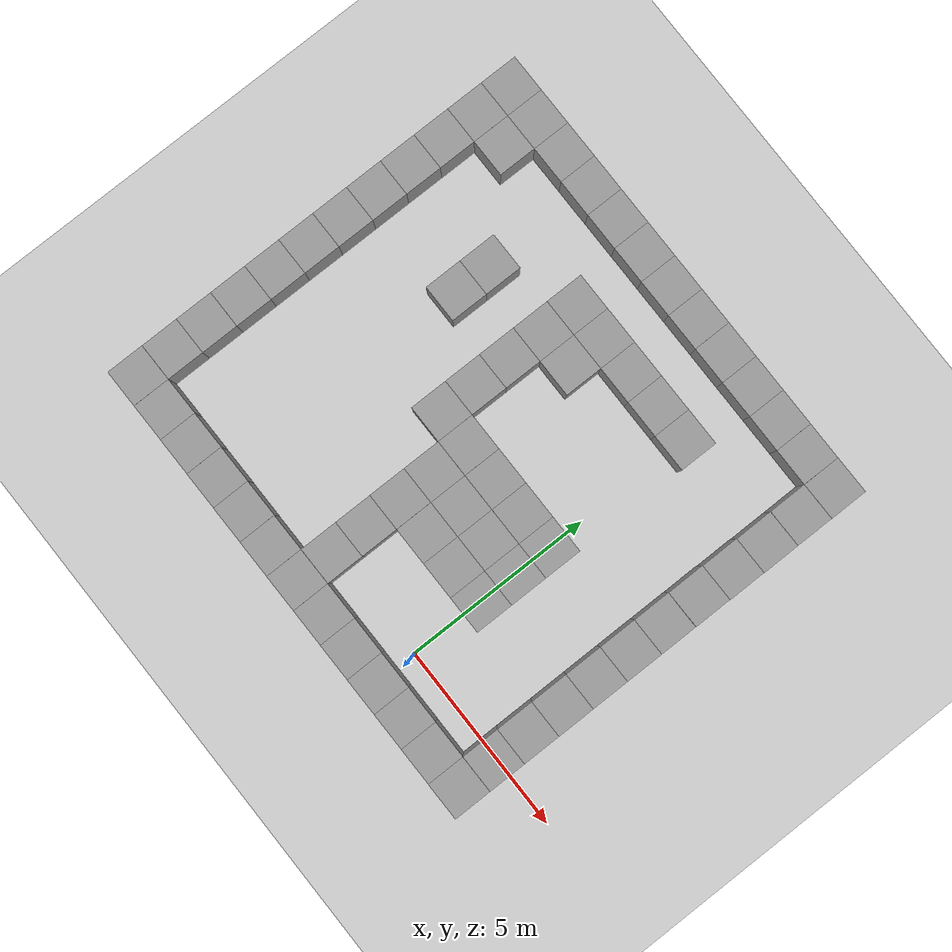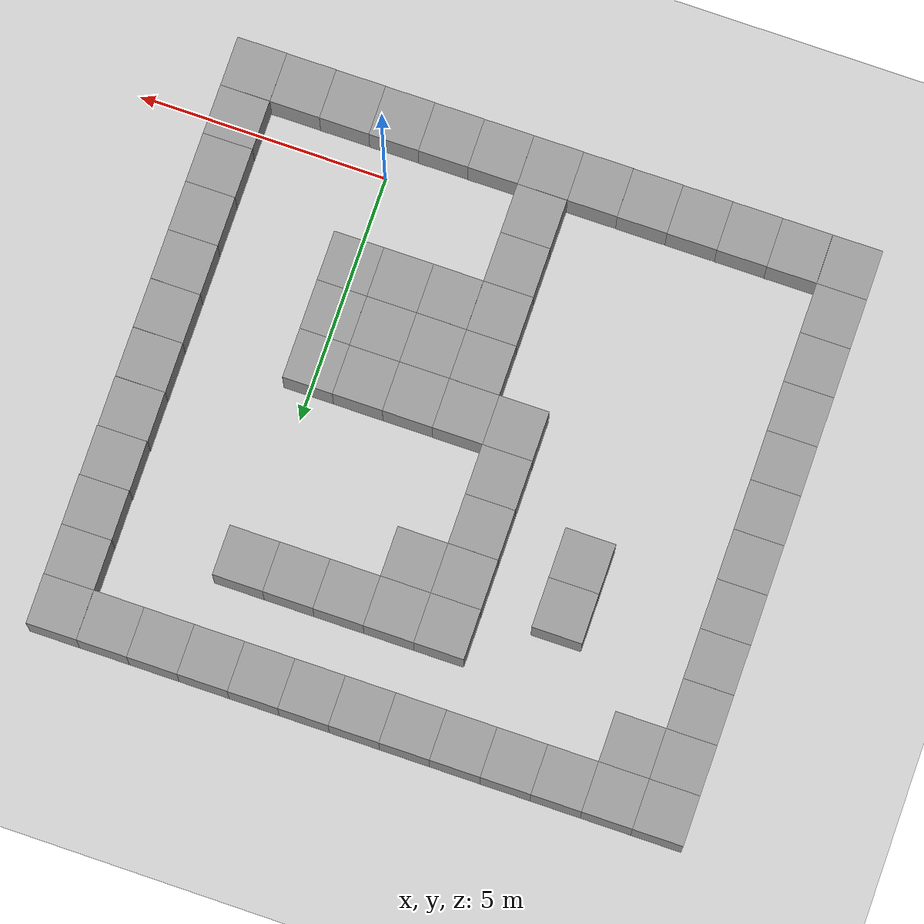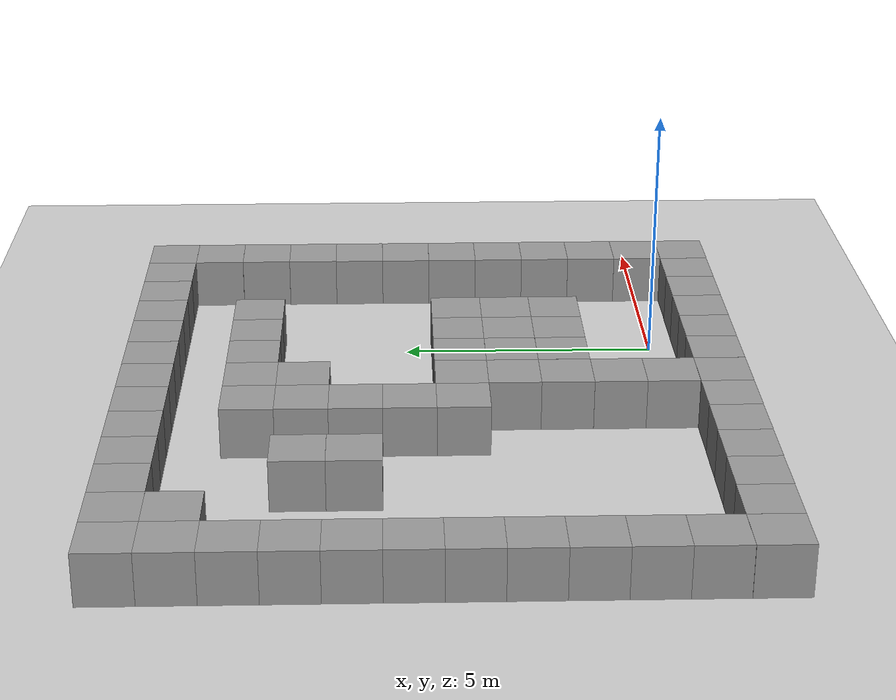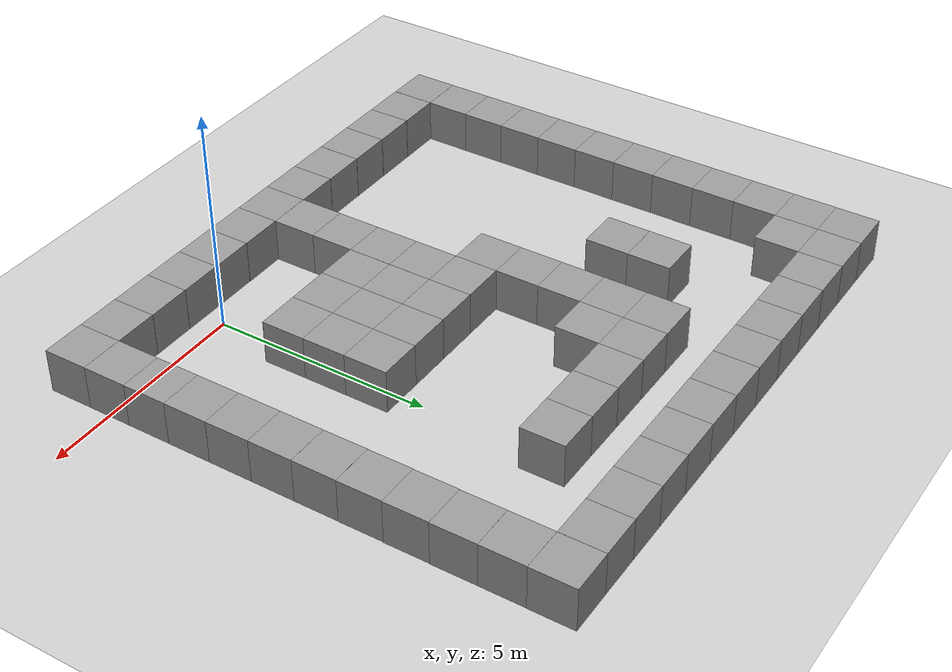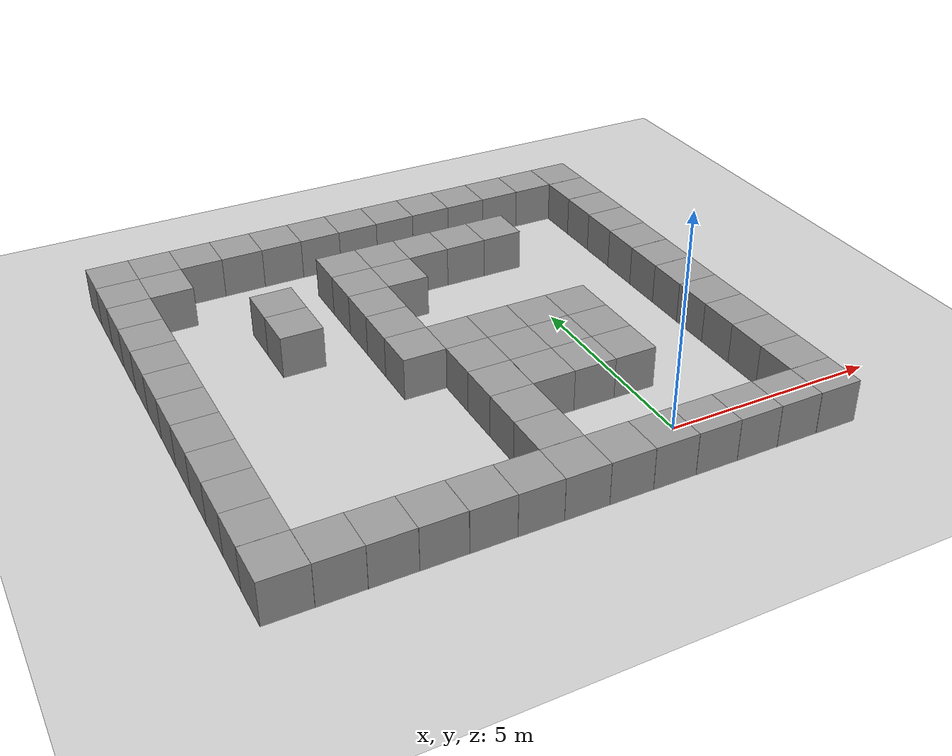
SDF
<sdf version="1.6">
 <world name="default">
  <light name="sun" type="directional">
   <pose>0 0 10 0 -0 0</pose>
   <diffuse>0.8 0.8 0.8 1</diffuse>
   <specular>0.2 0.2 0.2 1</specular>
   <attenuation>
    <range>1000</range>
    <constant>0.9</constant>
    <linear>0.01</linear>
    <quadratic>0.001</quadratic>
   </attenuation>
   <direction>-0.5 0.1 -0.9</direction>
  </light>
  <model name="ground_plane">
   <static>1</static>
   <link name="link">
    <collision name="collision">
     <geometry><plane><normal>0 0 1</normal><size>100 100</size></plane></geometry>
     <surface>
      <contact><collide_bitmask>65535</collide_bitmask></contact>
      <friction><ode><mu>100</mu><mu2>50</mu2></ode></friction>
     </surface>
    </collision>
    <visual name="visual">
     <cast_shadows>0</cast_shadows>
     <geometry><plane><normal>0 0 1</normal><size>100 100</size></plane></geometry>
     <material>
      <script><uri>file://media/materials/scripts/gazebo.material</uri><name>Gazebo/Grey</name></script>
     </material>
    </visual>
   </link>
  </model>
  <gravity>0 0 -9.8</gravity>
  <magnetic_field>6e-06 2.3e-05 -4.2e-05</magnetic_field>
  <atmosphere type="adiabatic"/>
  <physics name="default_physics" default="0" type="ode">
   <max_step_size>0.001</max_step_size>
   <real_time_factor>1</real_time_factor>
   <real_time_update_rate>1000</real_time_update_rate>
  </physics>
  <scene><ambient>0.4 0.4 0.4 1</ambient><background>0.7 0.7 0.7 1</background><shadows>1</shadows></scene>
  <audio><device>default</device></audio>
  <spherical_coordinates>
   <surface_model>EARTH_WGS84</surface_model>
   <latitude_deg>0</latitude_deg>
   <longitude_deg>0</longitude_deg>
   <elevation>0</elevation>
   <heading_deg>0</heading_deg>
  </spherical_coordinates>
  <model name="unit_box">
   <pose>1.00062 -1.00046 0.499995 0 1e-05 0.004028</pose>
   <link name="link">
    <inertial>
     <mass>1</mass>
     <inertia>
      <ixx>0.166667</ixx>
      <ixy>0</ixy>
      <ixz>0</ixz>
      <iyy>0.166667</iyy>
      <iyz>0</iyz>
      <izz>0.166667</izz>
     </inertia>
    </inertial>
    <collision name="collision"><geometry><box><size>1 1 1</size></box></geometry></collision>
    <visual name="visual">
     <geometry><box><size>1 1 1</size></box></geometry>
     <material>
      <script><name>Gazebo/Grey</name><uri>file://media/materials/scripts/gazebo.material</uri></script>
     </material>
    </visual>
   </link>
  </model>
  <model name="unit_box_0">
   <pose>2.00065 -1.00086 0.499995 -1e-05 -0 0.004051</pose>
   <link name="link">
    <inertial>
     <mass>1</mass>
     <inertia>
      <ixx>0.166667</ixx>
      <ixy>0</ixy>
      <ixz>0</ixz>
      <iyy>0.166667</iyy>
      <iyz>0</iyz>
      <izz>0.166667</izz>
     </inertia>
    </inertial>
    <collision name="collision"><geometry><box><size>1 1 1</size></box></geometry></collision>
    <visual name="visual">
     <geometry><box><size>1 1 1</size></box></geometry>
     <material>
      <script><name>Gazebo/Grey</name><uri>file://media/materials/scripts/gazebo.material</uri></script>
     </material>
    </visual>
   </link>
  </model>
  <model name="unit_box_1">
   <pose>3.00115 -1.00316 0.499995 -1e-05 -0 0.003325</pose>
   <link name="link">
    <inertial>
     <mass>1</mass>
     <inertia>
      <ixx>0.166667</ixx>
      <ixy>0</ixy>
      <ixz>0</ixz>
      <iyy>0.166667</iyy>
      <iyz>0</iyz>
      <izz>0.166667</izz>
     </inertia>
    </inertial>
    <collision name="collision"><geometry><box><size>1 1 1</size></box></geometry></collision>
    <visual name="visual">
     <geometry><box><size>1 1 1</size></box></geometry>
     <material>
      <script><name>Gazebo/Grey</name><uri>file://media/materials/scripts/gazebo.material</uri></script>
     </material>
    </visual>
   </link>
  </model>
  <model name="unit_box_3">
   <pose>-9.00138 -1.001 0.5 0 -0 0.00241</pose>
   <link name="link">
    <inertial>
     <mass>1</mass>
     <inertia>
      <ixx>0.166667</ixx>
      <ixy>0</ixy>
      <ixz>0</ixz>
      <iyy>0.166667</iyy>
      <iyz>0</iyz>
      <izz>0.166667</izz>
     </inertia>
    </inertial>
    <collision name="collision"><geometry><box><size>1 1 1</size></box></geometry></collision>
    <visual name="visual">
     <geometry><box><size>1 1 1</size></box></geometry>
     <material>
      <script><name>Gazebo/Grey</name><uri>file://media/materials/scripts/gazebo.material</uri></script>
     </material>
    </visual>
   </link>
  </model>
  <model name="unit_box_2">
   <pose>-8.00036 -0.999388 0.5 0 -0 0.004448</pose>
   <link name="link">
    <inertial>
     <mass>1</mass>
     <inertia>
      <ixx>0.166667</ixx>
      <ixy>0</ixy>
      <ixz>0</ixz>
      <iyy>0.166667</iyy>
      <iyz>0</iyz>
      <izz>0.166667</izz>
     </inertia>
    </inertial>
    <collision name="collision"><geometry><box><size>1 1 1</size></box></geometry></collision>
    <visual name="visual">
     <geometry><box><size>1 1 1</size></box></geometry>
     <material>
      <script><name>Gazebo/Grey</name><uri>file://media/materials/scripts/gazebo.material</uri></script>
     </material>
    </visual>
   </link>
  </model>
  <model name="unit_box_4">
   <pose>-7.00034 -0.999734 0.5 0 -0 0.004461</pose>
   <link name="link">
    <inertial>
     <mass>1</mass>
     <inertia>
      <ixx>0.166667</ixx>
      <ixy>0</ixy>
      <ixz>0</ixz>
      <iyy>0.166667</iyy>
      <iyz>0</iyz>
      <izz>0.166667</izz>
     </inertia>
    </inertial>
    <collision name="collision"><geometry><box><size>1 1 1</size></box></geometry></collision>
    <visual name="visual">
     <geometry><box><size>1 1 1</size></box></geometry>
     <material>
      <script><name>Gazebo/Grey</name><uri>file://media/materials/scripts/gazebo.material</uri></script>
     </material>
    </visual>
   </link>
  </model>
  <model name="unit_box_5">
   <pose>-6.00031 -1.00048 0.5 0 -0 0.004475</pose>
   <link name="link">
    <inertial>
     <mass>1</mass>
     <inertia>
      <ixx>0.166667</ixx>
      <ixy>0</ixy>
      <ixz>0</ixz>
      <iyy>0.166667</iyy>
      <iyz>0</iyz>
      <izz>0.166667</izz>
     </inertia>
    </inertial>
    <collision name="collision"><geometry><box><size>1 1 1</size></box></geometry></collision>
    <visual name="visual">
     <geometry><box><size>1 1 1</size></box></geometry>
     <material>
      <script><name>Gazebo/Grey</name><uri>file://media/materials/scripts/gazebo.material</uri></script>
     </material>
    </visual>
   </link>
  </model>
  <model name="unit_box_6">
   <pose>-5.00003 -1.00082 0.499995 0 -1e-05 0.004006</pose>
   <link name="link">
    <inertial>
     <mass>1</mass>
     <inertia>
      <ixx>0.166667</ixx>
      <ixy>0</ixy>
      <ixz>0</ixz>
      <iyy>0.166667</iyy>
      <iyz>0</iyz>
      <izz>0.166667</izz>
     </inertia>
    </inertial>
    <collision name="collision"><geometry><box><size>1 1 1</size></box></geometry></collision>
    <visual name="visual">
     <geometry><box><size>1 1 1</size></box></geometry>
     <material>
      <script><name>Gazebo/Grey</name><uri>file://media/materials/scripts/gazebo.material</uri></script>
     </material>
    </visual>
   </link>
  </model>
  <model name="unit_box_7">
   <pose>-3.99986 -1.00158 0.499995 -0 -1e-05 0.003713</pose>
   <link name="link">
    <inertial>
     <mass>1</mass>
     <inertia>
      <ixx>0.166667</ixx>
      <ixy>0</ixy>
      <ixz>0</ixz>
      <iyy>0.166667</iyy>
      <iyz>0</iyz>
      <izz>0.166667</izz>
     </inertia>
    </inertial>
    <collision name="collision"><geometry><box><size>1 1 1</size></box></geometry></collision>
    <visual name="visual">
     <geometry><box><size>1 1 1</size></box></geometry>
     <material>
      <script><name>Gazebo/Grey</name><uri>file://media/materials/scripts/gazebo.material</uri></script>
     </material>
    </visual>
   </link>
  </model>
  <model name="unit_box_8">
   <pose>-2.99973 -1.00164 0.499995 0 -1e-05 0.003477</pose>
   <link name="link">
    <inertial>
     <mass>1</mass>
     <inertia>
      <ixx>0.166667</ixx>
      <ixy>0</ixy>
      <ixz>0</ixz>
      <iyy>0.166667</iyy>
      <iyz>0</iyz>
      <izz>0.166667</izz>
     </inertia>
    </inertial>
    <collision name="collision"><geometry><box><size>1 1 1</size></box></geometry></collision>
    <visual name="visual">
     <geometry><box><size>1 1 1</size></box></geometry>
     <material>
      <script><name>Gazebo/Grey</name><uri>file://media/materials/scripts/gazebo.material</uri></script>
     </material>
    </visual>
   </link>
  </model>
  <model name="unit_box_9">
   <pose>-1.99944 -0.999945 0.499995 -1e-05 -0 0.004012</pose>
   <link name="link">
    <inertial>
     <mass>1</mass>
     <inertia>
      <ixx>0.166667</ixx>
      <ixy>0</ixy>
      <ixz>0</ixz>
      <iyy>0.166667</iyy>
      <iyz>0</iyz>
      <izz>0.166667</izz>
     </inertia>
    </inertial>
    <collision name="collision"><geometry><box><size>1 1 1</size></box></geometry></collision>
    <visual name="visual">
     <geometry><box><size>1 1 1</size></box></geometry>
     <material>
      <script><name>Gazebo/Grey</name><uri>file://media/materials/scripts/gazebo.material</uri></script>
     </material>
    </visual>
   </link>
  </model>
  <model name="unit_box_10">
   <pose>-0.999414 -1.00001 0.499995 0 1e-05 0.004016</pose>
   <link name="link">
    <inertial>
     <mass>1</mass>
     <inertia>
      <ixx>0.166667</ixx>
      <ixy>0</ixy>
      <ixz>0</ixz>
      <iyy>0.166667</iyy>
      <iyz>0</iyz>
      <izz>0.166667</izz>
     </inertia>
    </inertial>
    <collision name="collision"><geometry><box><size>1 1 1</size></box></geometry></collision>
    <visual name="visual">
     <geometry><box><size>1 1 1</size></box></geometry>
     <material>
      <script><name>Gazebo/Grey</name><uri>file://media/materials/scripts/gazebo.material</uri></script>
     </material>
    </visual>
   </link>
  </model>
  <model name="unit_box_11">
   <pose>0.000588 -1.00039 0.499995 0 -1e-05 0.004016</pose>
   <link name="link">
    <inertial>
     <mass>1</mass>
     <inertia>
      <ixx>0.166667</ixx>
      <ixy>0</ixy>
      <ixz>0</ixz>
      <iyy>0.166667</iyy>
      <iyz>0</iyz>
      <izz>0.166667</izz>
     </inertia>
    </inertial>
    <collision name="collision"><geometry><box><size>1 1 1</size></box></geometry></collision>
    <visual name="visual">
     <geometry><box><size>1 1 1</size></box></geometry>
     <material>
      <script><name>Gazebo/Grey</name><uri>file://media/materials/scripts/gazebo.material</uri></script>
     </material>
    </visual>
   </link>
  </model>
  <model name="unit_box_12">
   <pose>-9.00029 0.000122 0.499995 0 1e-05 0.000165</pose>
   <link name="link">
    <inertial>
     <mass>1</mass>
     <inertia>
      <ixx>0.166667</ixx>
      <ixy>0</ixy>
      <ixz>0</ixz>
      <iyy>0.166667</iyy>
      <iyz>0</iyz>
      <izz>0.166667</izz>
     </inertia>
    </inertial>
    <collision name="collision"><geometry><box><size>1 1 1</size></box></geometry></collision>
    <visual name="visual">
     <geometry><box><size>1 1 1</size></box></geometry>
     <material>
      <script><name>Gazebo/Grey</name><uri>file://media/materials/scripts/gazebo.material</uri></script>
     </material>
    </visual>
   </link>
  </model>
  <model name="unit_box_15">
   <pose>-3.00118 2.00026 0.5 0 -0 -0.000276</pose>
   <link name="link">
    <inertial>
     <mass>1</mass>
     <inertia>
      <ixx>0.166667</ixx>
      <ixy>0</ixy>
      <ixz>0</ixz>
      <iyy>0.166667</iyy>
      <iyz>0</iyz>
      <izz>0.166667</izz>
     </inertia>
    </inertial>
    <collision name="collision"><geometry><box><size>1 1 1</size></box></geometry></collision>
    <visual name="visual">
     <geometry><box><size>1 1 1</size></box></geometry>
     <material>
      <script><name>Gazebo/Grey</name><uri>file://media/materials/scripts/gazebo.material</uri></script>
     </material>
    </visual>
   </link>
  </model>
  <model name="unit_box_24">
   <pose>-9 1.00012 0.499995 0 1e-05 0.000165</pose>
   <link name="link">
    <inertial>
     <mass>1</mass>
     <inertia>
      <ixx>0.166667</ixx>
      <ixy>0</ixy>
      <ixz>0</ixz>
      <iyy>0.166667</iyy>
      <iyz>0</iyz>
      <izz>0.166667</izz>
     </inertia>
    </inertial>
    <collision name="collision"><geometry><box><size>1 1 1</size></box></geometry></collision>
    <visual name="visual">
     <geometry><box><size>1 1 1</size></box></geometry>
     <material>
      <script><name>Gazebo/Grey</name><uri>file://media/materials/scripts/gazebo.material</uri></script>
     </material>
    </visual>
   </link>
  </model>
  <model name="unit_box_25">
   <pose>-8.99969 2.00013 0.5 0 -0 0.000156</pose>
   <link name="link">
    <inertial>
     <mass>1</mass>
     <inertia>
      <ixx>0.166667</ixx>
      <ixy>0</ixy>
      <ixz>0</ixz>
      <iyy>0.166667</iyy>
      <iyz>0</iyz>
      <izz>0.166667</izz>
     </inertia>
    </inertial>
    <collision name="collision"><geometry><box><size>1 1 1</size></box></geometry></collision>
    <visual name="visual">
     <geometry><box><size>1 1 1</size></box></geometry>
     <material>
      <script><name>Gazebo/Grey</name><uri>file://media/materials/scripts/gazebo.material</uri></script>
     </material>
    </visual>
   </link>
  </model>
  <model name="unit_box_30">
   <pose>-9.00002 8.00018 0.499995 0 1e-05 0.000166</pose>
   <link name="link">
    <inertial>
     <mass>1</mass>
     <inertia>
      <ixx>0.166667</ixx>
      <ixy>0</ixy>
      <ixz>0</ixz>
      <iyy>0.166667</iyy>
      <iyz>0</iyz>
      <izz>0.166667</izz>
     </inertia>
    </inertial>
    <collision name="collision"><geometry><box><size>1 1 1</size></box></geometry></collision>
    <visual name="visual">
     <geometry><box><size>1 1 1</size></box></geometry>
     <material>
      <script><name>Gazebo/Grey</name><uri>file://media/materials/scripts/gazebo.material</uri></script>
     </material>
    </visual>
   </link>
  </model>
  <model name="unit_box_31">
   <pose>-9.00008 9.00018 0.499995 -0 -1e-05 0.000166</pose>
   <link name="link">
    <inertial>
     <mass>1</mass>
     <inertia>
      <ixx>0.166667</ixx>
      <ixy>0</ixy>
      <ixz>0</ixz>
      <iyy>0.166667</iyy>
      <iyz>0</iyz>
      <izz>0.166667</izz>
     </inertia>
    </inertial>
    <collision name="collision"><geometry><box><size>1 1 1</size></box></geometry></collision>
    <visual name="visual">
     <geometry><box><size>1 1 1</size></box></geometry>
     <material>
      <script><name>Gazebo/Grey</name><uri>file://media/materials/scripts/gazebo.material</uri></script>
     </material>
    </visual>
   </link>
  </model>
  <model name="unit_box_39">
   <pose>3.00075 -0.002105 0.499995 -1e-05 -0 0.001352</pose>
   <link name="link">
    <inertial>
     <mass>1</mass>
     <inertia>
      <ixx>0.166667</ixx>
      <ixy>0</ixy>
      <ixz>0</ixz>
      <iyy>0.166667</iyy>
      <iyz>0</iyz>
      <izz>0.166667</izz>
     </inertia>
    </inertial>
    <collision name="collision"><geometry><box><size>1 1 1</size></box></geometry></collision>
    <visual name="visual">
     <geometry><box><size>1 1 1</size></box></geometry>
     <material>
      <script><name>Gazebo/Grey</name><uri>file://media/materials/scripts/gazebo.material</uri></script>
     </material>
    </visual>
   </link>
  </model>
  <model name="unit_box_40">
   <pose>3.00094 0.997912 0.499995 0 1e-05 0.001375</pose>
   <link name="link">
    <inertial>
     <mass>1</mass>
     <inertia>
      <ixx>0.166667</ixx>
      <ixy>0</ixy>
      <ixz>0</ixz>
      <iyy>0.166667</iyy>
      <iyz>0</iyz>
      <izz>0.166667</izz>
     </inertia>
    </inertial>
    <collision name="collision"><geometry><box><size>1 1 1</size></box></geometry></collision>
    <visual name="visual">
     <geometry><box><size>1 1 1</size></box></geometry>
     <material>
      <script><name>Gazebo/Grey</name><uri>file://media/materials/scripts/gazebo.material</uri></script>
     </material>
    </visual>
   </link>
  </model>
  <model name="unit_box_41">
   <pose>3.00121 1.99792 0.499995 -0 -1e-05 0.001381</pose>
   <link name="link">
    <inertial>
     <mass>1</mass>
     <inertia>
      <ixx>0.166667</ixx>
      <ixy>0</ixy>
      <ixz>0</ixz>
      <iyy>0.166667</iyy>
      <iyz>0</iyz>
      <izz>0.166667</izz>
     </inertia>
    </inertial>
    <collision name="collision"><geometry><box><size>1 1 1</size></box></geometry></collision>
    <visual name="visual">
     <geometry><box><size>1 1 1</size></box></geometry>
     <material>
      <script><name>Gazebo/Grey</name><uri>file://media/materials/scripts/gazebo.material</uri></script>
     </material>
    </visual>
   </link>
  </model>
  <model name="unit_box_47">
   <pose>2.99919 2.99799 0.499995 0 -1e-05 0.00151</pose>
   <link name="link">
    <inertial>
     <mass>1</mass>
     <inertia>
      <ixx>0.166667</ixx>
      <ixy>0</ixy>
      <ixz>0</ixz>
      <iyy>0.166667</iyy>
      <iyz>0</iyz>
      <izz>0.166667</izz>
     </inertia>
    </inertial>
    <collision name="collision"><geometry><box><size>1 1 1</size></box></geometry></collision>
    <visual name="visual">
     <geometry><box><size>1 1 1</size></box></geometry>
     <material>
      <script><name>Gazebo/Grey</name><uri>file://media/materials/scripts/gazebo.material</uri></script>
     </material>
    </visual>
   </link>
  </model>
  <model name="unit_box_48">
   <pose>2.99794 3.99808 0.499995 0 -1e-05 0.001671</pose>
   <link name="link">
    <inertial>
     <mass>1</mass>
     <inertia>
      <ixx>0.166667</ixx>
      <ixy>0</ixy>
      <ixz>0</ixz>
      <iyy>0.166667</iyy>
      <iyz>0</iyz>
      <izz>0.166667</izz>
     </inertia>
    </inertial>
    <collision name="collision"><geometry><box><size>1 1 1</size></box></geometry></collision>
    <visual name="visual">
     <geometry><box><size>1 1 1</size></box></geometry>
     <material>
      <script><name>Gazebo/Grey</name><uri>file://media/materials/scripts/gazebo.material</uri></script>
     </material>
    </visual>
   </link>
  </model>
  <model name="unit_box_49">
   <pose>2.99727 4.99873 0.499995 -0 -1e-05 0.002965</pose>
   <link name="link">
    <inertial>
     <mass>1</mass>
     <inertia>
      <ixx>0.166667</ixx>
      <ixy>0</ixy>
      <ixz>0</ixz>
      <iyy>0.166667</iyy>
      <iyz>0</iyz>
      <izz>0.166667</izz>
     </inertia>
    </inertial>
    <collision name="collision"><geometry><box><size>1 1 1</size></box></geometry></collision>
    <visual name="visual">
     <geometry><box><size>1 1 1</size></box></geometry>
     <material>
      <script><name>Gazebo/Grey</name><uri>file://media/materials/scripts/gazebo.material</uri></script>
     </material>
    </visual>
   </link>
  </model>
  <model name="unit_box_50">
   <pose>2.99765 6.00088 0.499995 1e-05 0 0.007268</pose>
   <link name="link">
    <inertial>
     <mass>1</mass>
     <inertia>
      <ixx>0.166667</ixx>
      <ixy>0</ixy>
      <ixz>0</ixz>
      <iyy>0.166667</iyy>
      <iyz>0</iyz>
      <izz>0.166667</izz>
     </inertia>
    </inertial>
    <collision name="collision"><geometry><box><size>1 1 1</size></box></geometry></collision>
    <visual name="visual">
     <geometry><box><size>1 1 1</size></box></geometry>
     <material>
      <script><name>Gazebo/Grey</name><uri>file://media/materials/scripts/gazebo.material</uri></script>
     </material>
    </visual>
   </link>
  </model>
  <model name="unit_box_51">
   <pose>3.00199 7.00097 0.5 0 -0 0.007227</pose>
   <link name="link">
    <inertial>
     <mass>1</mass>
     <inertia>
      <ixx>0.166667</ixx>
      <ixy>0</ixy>
      <ixz>0</ixz>
      <iyy>0.166667</iyy>
      <iyz>0</iyz>
      <izz>0.166667</izz>
     </inertia>
    </inertial>
    <collision name="collision"><geometry><box><size>1 1 1</size></box></geometry></collision>
    <visual name="visual">
     <geometry><box><size>1 1 1</size></box></geometry>
     <material>
      <script><name>Gazebo/Grey</name><uri>file://media/materials/scripts/gazebo.material</uri></script>
     </material>
    </visual>
   </link>
  </model>
  <model name="unit_box_52">
   <pose>3.00479 8.00126 0.499995 0 -1e-05 0.00672</pose>
   <link name="link">
    <inertial>
     <mass>1</mass>
     <inertia>
      <ixx>0.166667</ixx>
      <ixy>0</ixy>
      <ixz>0</ixz>
      <iyy>0.166667</iyy>
      <iyz>0</iyz>
      <izz>0.166667</izz>
     </inertia>
    </inertial>
    <collision name="collision"><geometry><box><size>1 1 1</size></box></geometry></collision>
    <visual name="visual">
     <geometry><box><size>1 1 1</size></box></geometry>
     <material>
      <script><name>Gazebo/Grey</name><uri>file://media/materials/scripts/gazebo.material</uri></script>
     </material>
    </visual>
   </link>
  </model>
  <model name="unit_box_13">
   <pose>-2.99996 1.00006 0.499995 1e-05 -0 8e-05</pose>
   <link name="link">
    <inertial>
     <mass>1</mass>
     <inertia>
      <ixx>0.166667</ixx>
      <ixy>0</ixy>
      <ixz>0</ixz>
      <iyy>0.166667</iyy>
      <iyz>0</iyz>
      <izz>0.166667</izz>
     </inertia>
    </inertial>
    <collision name="collision"><geometry><box><size>1 1 1</size></box></geometry></collision>
    <visual name="visual">
     <geometry><box><size>1 1 1</size></box></geometry>
     <material>
      <script><name>Gazebo/Grey</name><uri>file://media/materials/scripts/gazebo.material</uri></script>
     </material>
    </visual>
   </link>
  </model>
  <model name="unit_box_14">
   <pose>-2.99993 5.7e-05 0.499995 0 -1e-05 8.2e-05</pose>
   <link name="link">
    <inertial>
     <mass>1</mass>
     <inertia>
      <ixx>0.166667</ixx>
      <ixy>0</ixy>
      <ixz>0</ixz>
      <iyy>0.166667</iyy>
      <iyz>0</iyz>
      <izz>0.166667</izz>
     </inertia>
    </inertial>
    <collision name="collision"><geometry><box><size>1 1 1</size></box></geometry></collision>
    <visual name="visual">
     <geometry><box><size>1 1 1</size></box></geometry>
     <material>
      <script><name>Gazebo/Grey</name><uri>file://media/materials/scripts/gazebo.material</uri></script>
     </material>
    </visual>
   </link>
  </model>
  <model name="unit_box_27">
   <pose>-1.99999 1.99996 0.499995 0 -9e-06 9e-06</pose>
   <link name="link">
    <inertial>
     <mass>1</mass>
     <inertia>
      <ixx>0.166667</ixx>
      <ixy>0</ixy>
      <ixz>0</ixz>
      <iyy>0.166667</iyy>
      <iyz>0</iyz>
      <izz>0.166667</izz>
     </inertia>
    </inertial>
    <collision name="collision"><geometry><box><size>1 1 1</size></box></geometry></collision>
    <visual name="visual">
     <geometry><box><size>1 1 1</size></box></geometry>
     <material>
      <script><name>Gazebo/Grey</name><uri>file://media/materials/scripts/gazebo.material</uri></script>
     </material>
    </visual>
   </link>
  </model>
  <model name="unit_box_42">
   <pose>-0.999981 1.99996 0.499997 0 7e-06 9e-06</pose>
   <link name="link">
    <inertial>
     <mass>1</mass>
     <inertia>
      <ixx>0.166667</ixx>
      <ixy>0</ixy>
      <ixz>0</ixz>
      <iyy>0.166667</iyy>
      <iyz>0</iyz>
      <izz>0.166667</izz>
     </inertia>
    </inertial>
    <collision name="collision"><geometry><box><size>1 1 1</size></box></geometry></collision>
    <visual name="visual">
     <geometry><box><size>1 1 1</size></box></geometry>
     <material>
      <script><name>Gazebo/Grey</name><uri>file://media/materials/scripts/gazebo.material</uri></script>
     </material>
    </visual>
   </link>
  </model>
  <model name="unit_box_43">
   <pose>2.3e-05 1.99998 0.499995 -1e-05 -0 7e-06</pose>
   <link name="link">
    <inertial>
     <mass>1</mass>
     <inertia>
      <ixx>0.166667</ixx>
      <ixy>0</ixy>
      <ixz>0</ixz>
      <iyy>0.166667</iyy>
      <iyz>0</iyz>
      <izz>0.166667</izz>
     </inertia>
    </inertial>
    <collision name="collision"><geometry><box><size>1 1 1</size></box></geometry></collision>
    <visual name="visual">
     <geometry><box><size>1 1 1</size></box></geometry>
     <material>
      <script><name>Gazebo/Grey</name><uri>file://media/materials/scripts/gazebo.material</uri></script>
     </material>
    </visual>
   </link>
  </model>
  <model name="unit_box_44">
   <pose>3.6e-05 3 0.499995 -1e-05 -0 -3.4e-05</pose>
   <link name="link">
    <inertial>
     <mass>1</mass>
     <inertia>
      <ixx>0.166667</ixx>
      <ixy>0</ixy>
      <ixz>0</ixz>
      <iyy>0.166667</iyy>
      <iyz>0</iyz>
      <izz>0.166667</izz>
     </inertia>
    </inertial>
    <collision name="collision"><geometry><box><size>1 1 1</size></box></geometry></collision>
    <visual name="visual">
     <geometry><box><size>1 1 1</size></box></geometry>
     <material>
      <script><name>Gazebo/Grey</name><uri>file://media/materials/scripts/gazebo.material</uri></script>
     </material>
    </visual>
   </link>
  </model>
  <model name="unit_box_45">
   <pose>2.8e-05 4.00004 0.499995 0 -1e-05 -7.7e-05</pose>
   <link name="link">
    <inertial>
     <mass>1</mass>
     <inertia>
      <ixx>0.166667</ixx>
      <ixy>0</ixy>
      <ixz>0</ixz>
      <iyy>0.166667</iyy>
      <iyz>0</iyz>
      <izz>0.166667</izz>
     </inertia>
    </inertial>
    <collision name="collision"><geometry><box><size>1 1 1</size></box></geometry></collision>
    <visual name="visual">
     <geometry><box><size>1 1 1</size></box></geometry>
     <material>
      <script><name>Gazebo/Grey</name><uri>file://media/materials/scripts/gazebo.material</uri></script>
     </material>
    </visual>
   </link>
  </model>
  <model name="unit_box_16">
   <pose>-3.00015 3.00026 0.5 -0 -0 -0.000275</pose>
   <link name="link">
    <inertial>
     <mass>1</mass>
     <inertia>
      <ixx>0.166667</ixx>
      <ixy>0</ixy>
      <ixz>0</ixz>
      <iyy>0.166667</iyy>
      <iyz>0</iyz>
      <izz>0.166667</izz>
     </inertia>
    </inertial>
    <collision name="collision"><geometry><box><size>1 1 1</size></box></geometry></collision>
    <visual name="visual">
     <geometry><box><size>1 1 1</size></box></geometry>
     <material>
      <script><name>Gazebo/Grey</name><uri>file://media/materials/scripts/gazebo.material</uri></script>
     </material>
    </visual>
   </link>
  </model>
  <model name="unit_box_17">
   <pose>-3.00006 4.00031 0.499995 0 -1e-05 -0.000186</pose>
   <link name="link">
    <inertial>
     <mass>1</mass>
     <inertia>
      <ixx>0.166667</ixx>
      <ixy>0</ixy>
      <ixz>0</ixz>
      <iyy>0.166667</iyy>
      <iyz>0</iyz>
      <izz>0.166667</izz>
     </inertia>
    </inertial>
    <collision name="collision"><geometry><box><size>1 1 1</size></box></geometry></collision>
    <visual name="visual">
     <geometry><box><size>1 1 1</size></box></geometry>
     <material>
      <script><name>Gazebo/Grey</name><uri>file://media/materials/scripts/gazebo.material</uri></script>
     </material>
    </visual>
   </link>
  </model>
  <model name="unit_box_18">
   <pose>-1.99998 4.00012 0.499995 0 -1e-05 -9.3e-05</pose>
   <link name="link">
    <inertial>
     <mass>1</mass>
     <inertia>
      <ixx>0.166667</ixx>
      <ixy>0</ixy>
      <ixz>0</ixz>
      <iyy>0.166667</iyy>
      <iyz>0</iyz>
      <izz>0.166667</izz>
     </inertia>
    </inertial>
    <collision name="collision"><geometry><box><size>1 1 1</size></box></geometry></collision>
    <visual name="visual">
     <geometry><box><size>1 1 1</size></box></geometry>
     <material>
      <script><name>Gazebo/Grey</name><uri>file://media/materials/scripts/gazebo.material</uri></script>
     </material>
    </visual>
   </link>
  </model>
  <model name="unit_box_19">
   <pose>-0.999965 4.00005 0.499995 0 1e-05 -8.2e-05</pose>
   <link name="link">
    <inertial>
     <mass>1</mass>
     <inertia>
      <ixx>0.166667</ixx>
      <ixy>0</ixy>
      <ixz>0</ixz>
      <iyy>0.166667</iyy>
      <iyz>0</iyz>
      <izz>0.166667</izz>
     </inertia>
    </inertial>
    <collision name="collision"><geometry><box><size>1 1 1</size></box></geometry></collision>
    <visual name="visual">
     <geometry><box><size>1 1 1</size></box></geometry>
     <material>
      <script><name>Gazebo/Grey</name><uri>file://media/materials/scripts/gazebo.material</uri></script>
     </material>
    </visual>
   </link>
  </model>
  <model name="unit_box_20">
   <pose>-0.999977 3 0.499995 0 -1e-05 -3.6e-05</pose>
   <link name="link">
    <inertial>
     <mass>1</mass>
     <inertia>
      <ixx>0.166667</ixx>
      <ixy>0</ixy>
      <ixz>0</ixz>
      <iyy>0.166667</iyy>
      <iyz>0</iyz>
      <izz>0.166667</izz>
     </inertia>
    </inertial>
    <collision name="collision"><geometry><box><size>1 1 1</size></box></geometry></collision>
    <visual name="visual">
     <geometry><box><size>1 1 1</size></box></geometry>
     <material>
      <script><name>Gazebo/Grey</name><uri>file://media/materials/scripts/gazebo.material</uri></script>
     </material>
    </visual>
   </link>
  </model>
  <model name="unit_box_21">
   <pose>-1.99998 3.00001 0.499995 -1e-05 -0 -3.6e-05</pose>
   <link name="link">
    <inertial>
     <mass>1</mass>
     <inertia>
      <ixx>0.166667</ixx>
      <ixy>0</ixy>
      <ixz>0</ixz>
      <iyy>0.166667</iyy>
      <iyz>0</iyz>
      <izz>0.166667</izz>
     </inertia>
    </inertial>
    <collision name="collision"><geometry><box><size>1 1 1</size></box></geometry></collision>
    <visual name="visual">
     <geometry><box><size>1 1 1</size></box></geometry>
     <material>
      <script><name>Gazebo/Grey</name><uri>file://media/materials/scripts/gazebo.material</uri></script>
     </material>
    </visual>
   </link>
  </model>
  <model name="unit_box_22">
   <pose>-4.00011 3.99998 0.499995 1e-05 0 -8.4e-05</pose>
   <link name="link">
    <inertial>
     <mass>1</mass>
     <inertia>
      <ixx>0.166667</ixx>
      <ixy>0</ixy>
      <ixz>0</ixz>
      <iyy>0.166667</iyy>
      <iyz>0</iyz>
      <izz>0.166667</izz>
     </inertia>
    </inertial>
    <collision name="collision"><geometry><box><size>1 1 1</size></box></geometry></collision>
    <visual name="visual">
     <geometry><box><size>1 1 1</size></box></geometry>
     <material>
      <script><name>Gazebo/Grey</name><uri>file://media/materials/scripts/gazebo.material</uri></script>
     </material>
    </visual>
   </link>
  </model>
  <model name="unit_box_46">
   <pose>-4.00003 6.00001 0.499995 0 1e-05 -3.7e-05</pose>
   <link name="link">
    <inertial>
     <mass>1</mass>
     <inertia>
      <ixx>0.166667</ixx>
      <ixy>0</ixy>
      <ixz>0</ixz>
      <iyy>0.166667</iyy>
      <iyz>0</iyz>
      <izz>0.166667</izz>
     </inertia>
    </inertial>
    <collision name="collision"><geometry><box><size>1 1 1</size></box></geometry></collision>
    <visual name="visual">
     <geometry><box><size>1 1 1</size></box></geometry>
     <material>
      <script><name>Gazebo/Grey</name><uri>file://media/materials/scripts/gazebo.material</uri></script>
     </material>
    </visual>
   </link>
  </model>
  <model name="unit_box_58">
   <pose>-4.00003 7.00003 0.499995 -1e-05 -0 -2.4e-05</pose>
   <link name="link">
    <inertial>
     <mass>1</mass>
     <inertia>
      <ixx>0.166667</ixx>
      <ixy>0</ixy>
      <ixz>0</ixz>
      <iyy>0.166667</iyy>
      <iyz>0</iyz>
      <izz>0.166667</izz>
     </inertia>
    </inertial>
    <collision name="collision"><geometry><box><size>1 1 1</size></box></geometry></collision>
    <visual name="visual">
     <geometry><box><size>1 1 1</size></box></geometry>
     <material>
      <script><name>Gazebo/Grey</name><uri>file://media/materials/scripts/gazebo.material</uri></script>
     </material>
    </visual>
   </link>
  </model>
  <model name="unit_box_59">
   <pose>-2.99999 7 0.499995 1e-05 0 -3e-05</pose>
   <link name="link">
    <inertial>
     <mass>1</mass>
     <inertia>
      <ixx>0.166667</ixx>
      <ixy>0</ixy>
      <ixz>0</ixz>
      <iyy>0.166667</iyy>
      <iyz>0</iyz>
      <izz>0.166667</izz>
     </inertia>
    </inertial>
    <collision name="collision"><geometry><box><size>1 1 1</size></box></geometry></collision>
    <visual name="visual">
     <geometry><box><size>1 1 1</size></box></geometry>
     <material>
      <script><name>Gazebo/Grey</name><uri>file://media/materials/scripts/gazebo.material</uri></script>
     </material>
    </visual>
   </link>
  </model>
  <model name="unit_box_63">
   <pose>-6.00002 6 0.499995 1e-05 0 4e-06</pose>
   <link name="link">
    <inertial>
     <mass>1</mass>
     <inertia>
      <ixx>0.166667</ixx>
      <ixy>0</ixy>
      <ixz>0</ixz>
      <iyy>0.166667</iyy>
      <iyz>0</iyz>
      <izz>0.166667</izz>
     </inertia>
    </inertial>
    <collision name="collision"><geometry><box><size>1 1 1</size></box></geometry></collision>
    <visual name="visual">
     <geometry><box><size>1 1 1</size></box></geometry>
     <material>
      <script><name>Gazebo/Grey</name><uri>file://media/materials/scripts/gazebo.material</uri></script>
     </material>
    </visual>
   </link>
  </model>
  <model name="unit_box_23">
   <pose>-6 7.00002 0.499995 -0 1e-05 4e-06</pose>
   <link name="link">
    <inertial>
     <mass>1</mass>
     <inertia>
      <ixx>0.166667</ixx>
      <ixy>0</ixy>
      <ixz>0</ixz>
      <iyy>0.166667</iyy>
      <iyz>0</iyz>
      <izz>0.166667</izz>
     </inertia>
    </inertial>
    <collision name="collision"><geometry><box><size>1 1 1</size></box></geometry></collision>
    <visual name="visual">
     <geometry><box><size>1 1 1</size></box></geometry>
     <material>
      <script><name>Gazebo/Grey</name><uri>file://media/materials/scripts/gazebo.material</uri></script>
     </material>
    </visual>
   </link>
  </model>
  <model name="unit_box_28">
   <pose>3.00059 9.00222 0.499995 0 -1e-05 0.004809</pose>
   <link name="link">
    <inertial>
     <mass>1</mass>
     <inertia>
      <ixx>0.166667</ixx>
      <ixy>0</ixy>
      <ixz>0</ixz>
      <iyy>0.166667</iyy>
      <iyz>0</iyz>
      <izz>0.166667</izz>
     </inertia>
    </inertial>
    <collision name="collision"><geometry><box><size>1 1 1</size></box></geometry></collision>
    <visual name="visual">
     <geometry><box><size>1 1 1</size></box></geometry>
     <material>
      <script><name>Gazebo/Grey</name><uri>file://media/materials/scripts/gazebo.material</uri></script>
     </material>
    </visual>
   </link>
  </model>
  <model name="unit_box_29">
   <pose>3.00148 10.0029 0.499995 0 -1e-05 0.003514</pose>
   <link name="link">
    <inertial>
     <mass>1</mass>
     <inertia>
      <ixx>0.166667</ixx>
      <ixy>0</ixy>
      <ixz>0</ixz>
      <iyy>0.166667</iyy>
      <iyz>0</iyz>
      <izz>0.166667</izz>
     </inertia>
    </inertial>
    <collision name="collision"><geometry><box><size>1 1 1</size></box></geometry></collision>
    <visual name="visual">
     <geometry><box><size>1 1 1</size></box></geometry>
     <material>
      <script><name>Gazebo/Grey</name><uri>file://media/materials/scripts/gazebo.material</uri></script>
     </material>
    </visual>
   </link>
  </model>
  <model name="unit_box_37">
   <pose>2.00004 10.0002 0.499995 0 -1e-05 0.000619</pose>
   <link name="link">
    <inertial>
     <mass>1</mass>
     <inertia>
      <ixx>0.166667</ixx>
      <ixy>0</ixy>
      <ixz>0</ixz>
      <iyy>0.166667</iyy>
      <iyz>0</iyz>
      <izz>0.166667</izz>
     </inertia>
    </inertial>
    <collision name="collision"><geometry><box><size>1 1 1</size></box></geometry></collision>
    <visual name="visual">
     <geometry><box><size>1 1 1</size></box></geometry>
     <material>
      <script><name>Gazebo/Grey</name><uri>file://media/materials/scripts/gazebo.material</uri></script>
     </material>
    </visual>
   </link>
  </model>
  <model name="unit_box_38">
   <pose>0.99996 10.0001 0.499995 -0 -1e-05 0.00048</pose>
   <link name="link">
    <inertial>
     <mass>1</mass>
     <inertia>
      <ixx>0.166667</ixx>
      <ixy>0</ixy>
      <ixz>0</ixz>
      <iyy>0.166667</iyy>
      <iyz>0</iyz>
      <izz>0.166667</izz>
     </inertia>
    </inertial>
    <collision name="collision"><geometry><box><size>1 1 1</size></box></geometry></collision>
    <visual name="visual">
     <geometry><box><size>1 1 1</size></box></geometry>
     <material>
      <script><name>Gazebo/Grey</name><uri>file://media/materials/scripts/gazebo.material</uri></script>
     </material>
    </visual>
   </link>
  </model>
  <model name="unit_box_53">
   <pose>-8.1e-05 10.0003 0.499995 1e-05 -0 0.000399</pose>
   <link name="link">
    <inertial>
     <mass>1</mass>
     <inertia>
      <ixx>0.166667</ixx>
      <ixy>0</ixy>
      <ixz>0</ixz>
      <iyy>0.166667</iyy>
      <iyz>0</iyz>
      <izz>0.166667</izz>
     </inertia>
    </inertial>
    <collision name="collision"><geometry><box><size>1 1 1</size></box></geometry></collision>
    <visual name="visual">
     <geometry><box><size>1 1 1</size></box></geometry>
     <material>
      <script><name>Gazebo/Grey</name><uri>file://media/materials/scripts/gazebo.material</uri></script>
     </material>
    </visual>
   </link>
  </model>
  <model name="unit_box_54">
   <pose>-1.00011 10.0005 0.499995 -1e-05 -0 0.000344</pose>
   <link name="link">
    <inertial>
     <mass>1</mass>
     <inertia>
      <ixx>0.166667</ixx>
      <ixy>0</ixy>
      <ixz>0</ixz>
      <iyy>0.166667</iyy>
      <iyz>0</iyz>
      <izz>0.166667</izz>
     </inertia>
    </inertial>
    <collision name="collision"><geometry><box><size>1 1 1</size></box></geometry></collision>
    <visual name="visual">
     <geometry><box><size>1 1 1</size></box></geometry>
     <material>
      <script><name>Gazebo/Grey</name><uri>file://media/materials/scripts/gazebo.material</uri></script>
     </material>
    </visual>
   </link>
  </model>
  <model name="unit_box_55">
   <pose>-2.00016 10.0003 0.499995 -1e-05 -0 0.000252</pose>
   <link name="link">
    <inertial>
     <mass>1</mass>
     <inertia>
      <ixx>0.166667</ixx>
      <ixy>0</ixy>
      <ixz>0</ixz>
      <iyy>0.166667</iyy>
      <iyz>0</iyz>
      <izz>0.166667</izz>
     </inertia>
    </inertial>
    <collision name="collision"><geometry><box><size>1 1 1</size></box></geometry></collision>
    <visual name="visual">
     <geometry><box><size>1 1 1</size></box></geometry>
     <material>
      <script><name>Gazebo/Grey</name><uri>file://media/materials/scripts/gazebo.material</uri></script>
     </material>
    </visual>
   </link>
  </model>
  <model name="unit_box_56">
   <pose>-3.00017 10.0001 0.499995 1e-05 0 0.000243</pose>
   <link name="link">
    <inertial>
     <mass>1</mass>
     <inertia>
      <ixx>0.166667</ixx>
      <ixy>0</ixy>
      <ixz>0</ixz>
      <iyy>0.166667</iyy>
      <iyz>0</iyz>
      <izz>0.166667</izz>
     </inertia>
    </inertial>
    <collision name="collision"><geometry><box><size>1 1 1</size></box></geometry></collision>
    <visual name="visual">
     <geometry><box><size>1 1 1</size></box></geometry>
     <material>
      <script><name>Gazebo/Grey</name><uri>file://media/materials/scripts/gazebo.material</uri></script>
     </material>
    </visual>
   </link>
  </model>
  <model name="unit_box_32">
   <pose>-9.0002 10.0002 0.5 0 -0 0.000216</pose>
   <link name="link">
    <inertial>
     <mass>1</mass>
     <inertia>
      <ixx>0.166667</ixx>
      <ixy>0</ixy>
      <ixz>0</ixz>
      <iyy>0.166667</iyy>
      <iyz>0</iyz>
      <izz>0.166667</izz>
     </inertia>
    </inertial>
    <collision name="collision"><geometry><box><size>1 1 1</size></box></geometry></collision>
    <visual name="visual">
     <geometry><box><size>1 1 1</size></box></geometry>
     <material>
      <script><name>Gazebo/Grey</name><uri>file://media/materials/scripts/gazebo.material</uri></script>
     </material>
    </visual>
   </link>
  </model>
  <model name="unit_box_33">
   <pose>-8.00019 10 0.499995 0 -1e-05 0.000238</pose>
   <link name="link">
    <inertial>
     <mass>1</mass>
     <inertia>
      <ixx>0.166667</ixx>
      <ixy>0</ixy>
      <ixz>0</ixz>
      <iyy>0.166667</iyy>
      <iyz>0</iyz>
      <izz>0.166667</izz>
     </inertia>
    </inertial>
    <collision name="collision"><geometry><box><size>1 1 1</size></box></geometry></collision>
    <visual name="visual">
     <geometry><box><size>1 1 1</size></box></geometry>
     <material>
      <script><name>Gazebo/Grey</name><uri>file://media/materials/scripts/gazebo.material</uri></script>
     </material>
    </visual>
   </link>
  </model>
  <model name="unit_box_34">
   <pose>-7.00018 10.0001 0.499995 -1e-05 0 0.000241</pose>
   <link name="link">
    <inertial>
     <mass>1</mass>
     <inertia>
      <ixx>0.166667</ixx>
      <ixy>0</ixy>
      <ixz>0</ixz>
      <iyy>0.166667</iyy>
      <iyz>0</iyz>
      <izz>0.166667</izz>
     </inertia>
    </inertial>
    <collision name="collision"><geometry><box><size>1 1 1</size></box></geometry></collision>
    <visual name="visual">
     <geometry><box><size>1 1 1</size></box></geometry>
     <material>
      <script><name>Gazebo/Grey</name><uri>file://media/materials/scripts/gazebo.material</uri></script>
     </material>
    </visual>
   </link>
  </model>
  <model name="unit_box_35">
   <pose>-6.00018 10.0001 0.499995 0 -1e-05 0.00024</pose>
   <link name="link">
    <inertial>
     <mass>1</mass>
     <inertia>
      <ixx>0.166667</ixx>
      <ixy>0</ixy>
      <ixz>0</ixz>
      <iyy>0.166667</iyy>
      <iyz>0</iyz>
      <izz>0.166667</izz>
     </inertia>
    </inertial>
    <collision name="collision"><geometry><box><size>1 1 1</size></box></geometry></collision>
    <visual name="visual">
     <geometry><box><size>1 1 1</size></box></geometry>
     <material>
      <script><name>Gazebo/Grey</name><uri>file://media/materials/scripts/gazebo.material</uri></script>
     </material>
    </visual>
   </link>
  </model>
  <model name="unit_box_57">
   <pose>-5.00017 10.0003 0.499995 0 1e-05 0.000241</pose>
   <link name="link">
    <inertial>
     <mass>1</mass>
     <inertia>
      <ixx>0.166667</ixx>
      <ixy>0</ixy>
      <ixz>0</ixz>
      <iyy>0.166667</iyy>
      <iyz>0</iyz>
      <izz>0.166667</izz>
     </inertia>
    </inertial>
    <collision name="collision"><geometry><box><size>1 1 1</size></box></geometry></collision>
    <visual name="visual">
     <geometry><box><size>1 1 1</size></box></geometry>
     <material>
      <script><name>Gazebo/Grey</name><uri>file://media/materials/scripts/gazebo.material</uri></script>
     </material>
    </visual>
   </link>
  </model>
  <model name="unit_box_64">
   <pose>-4.00017 10.0002 0.499995 1e-05 0 0.000242</pose>
   <link name="link">
    <inertial>
     <mass>1</mass>
     <inertia>
      <ixx>0.166667</ixx>
      <ixy>0</ixy>
      <ixz>0</ixz>
      <iyy>0.166667</iyy>
      <iyz>0</iyz>
      <izz>0.166667</izz>
     </inertia>
    </inertial>
    <collision name="collision"><geometry><box><size>1 1 1</size></box></geometry></collision>
    <visual name="visual">
     <geometry><box><size>1 1 1</size></box></geometry>
     <material>
      <script><name>Gazebo/Grey</name><uri>file://media/materials/scripts/gazebo.material</uri></script>
     </material>
    </visual>
   </link>
  </model>
  <model name="unit_box_65">
   <pose>-7.99994 8.99994 0.499995 0 1e-05 0.000112</pose>
   <link name="link">
    <inertial>
     <mass>1</mass>
     <inertia>
      <ixx>0.166667</ixx>
      <ixy>0</ixy>
      <ixz>0</ixz>
      <iyy>0.166667</iyy>
      <iyz>0</iyz>
      <izz>0.166667</izz>
     </inertia>
    </inertial>
    <collision name="collision"><geometry><box><size>1 1 1</size></box></geometry></collision>
    <visual name="visual">
     <geometry><box><size>1 1 1</size></box></geometry>
     <material>
      <script><name>Gazebo/Grey</name><uri>file://media/materials/scripts/gazebo.material</uri></script>
     </material>
    </visual>
   </link>
  </model>
  <model name="unit_box_36">
   <pose>-9.00006 7.00016 0.499995 0 1e-05 0.000142</pose>
   <link name="link">
    <inertial>
     <mass>1</mass>
     <inertia>
      <ixx>0.166667</ixx>
      <ixy>0</ixy>
      <ixz>0</ixz>
      <iyy>0.166667</iyy>
      <iyz>0</iyz>
      <izz>0.166667</izz>
     </inertia>
    </inertial>
    <collision name="collision"><geometry><box><size>1 1 1</size></box></geometry></collision>
    <visual name="visual">
     <geometry><box><size>1 1 1</size></box></geometry>
     <material>
      <script><name>Gazebo/Grey</name><uri>file://media/materials/scripts/gazebo.material</uri></script>
     </material>
    </visual>
   </link>
  </model>
  <model name="unit_box_66">
   <pose>-8.99997 6.00015 0.499995 -1e-05 -0 0.000139</pose>
   <link name="link">
    <inertial>
     <mass>1</mass>
     <inertia>
      <ixx>0.166667</ixx>
      <ixy>0</ixy>
      <ixz>0</ixz>
      <iyy>0.166667</iyy>
      <iyz>0</iyz>
      <izz>0.166667</izz>
     </inertia>
    </inertial>
    <collision name="collision"><geometry><box><size>1 1 1</size></box></geometry></collision>
    <visual name="visual">
     <geometry><box><size>1 1 1</size></box></geometry>
     <material>
      <script><name>Gazebo/Grey</name><uri>file://media/materials/scripts/gazebo.material</uri></script>
     </material>
    </visual>
   </link>
  </model>
  <model name="unit_box_26">
   <pose>-8.99995 5.00014 0.5 0 -0 0.000155</pose>
   <link name="link">
    <inertial>
     <mass>1</mass>
     <inertia>
      <ixx>0.166667</ixx>
      <ixy>0</ixy>
      <ixz>0</ixz>
      <iyy>0.166667</iyy>
      <iyz>0</iyz>
      <izz>0.166667</izz>
     </inertia>
    </inertial>
    <collision name="collision"><geometry><box><size>1 1 1</size></box></geometry></collision>
    <visual name="visual">
     <geometry><box><size>1 1 1</size></box></geometry>
     <material>
      <script><name>Gazebo/Grey</name><uri>file://media/materials/scripts/gazebo.material</uri></script>
     </material>
    </visual>
   </link>
  </model>
  <model name="unit_box_67">
   <pose>-8.99995 4.00013 0.5 0 -0 0.000155</pose>
   <link name="link">
    <inertial>
     <mass>1</mass>
     <inertia>
      <ixx>0.166667</ixx>
      <ixy>0</ixy>
      <ixz>0</ixz>
      <iyy>0.166667</iyy>
      <iyz>0</iyz>
      <izz>0.166667</izz>
     </inertia>
    </inertial>
    <collision name="collision"><geometry><box><size>1 1 1</size></box></geometry></collision>
    <visual name="visual">
     <geometry><box><size>1 1 1</size></box></geometry>
     <material>
      <script><name>Gazebo/Grey</name><uri>file://media/materials/scripts/gazebo.material</uri></script>
     </material>
    </visual>
   </link>
  </model>
  <model name="unit_box_68">
   <pose>-8.99981 3.00013 0.499995 0 1e-05 0.000154</pose>
   <link name="link">
    <inertial>
     <mass>1</mass>
     <inertia>
      <ixx>0.166667</ixx>
      <ixy>0</ixy>
      <ixz>0</ixz>
      <iyy>0.166667</iyy>
      <iyz>0</iyz>
      <izz>0.166667</izz>
     </inertia>
    </inertial>
    <collision name="collision"><geometry><box><size>1 1 1</size></box></geometry></collision>
    <visual name="visual">
     <geometry><box><size>1 1 1</size></box></geometry>
     <material>
      <script><name>Gazebo/Grey</name><uri>file://media/materials/scripts/gazebo.material</uri></script>
     </material>
    </visual>
   </link>
  </model>
  <model name="unit_box_69">
   <pose>-4 5.00001 0.5 -0 -0 -3.7e-05</pose>
   <link name="link">
    <inertial>
     <mass>1</mass>
     <inertia>
      <ixx>0.166667</ixx>
      <ixy>0</ixy>
      <ixz>0</ixz>
      <iyy>0.166667</iyy>
      <iyz>0</iyz>
      <izz>0.166667</izz>
     </inertia>
    </inertial>
    <collision name="collision"><geometry><box><size>1 1 1</size></box></geometry></collision>
    <visual name="visual">
     <geometry><box><size>1 1 1</size></box></geometry>
     <material>
      <script><name>Gazebo/Grey</name><uri>file://media/materials/scripts/gazebo.material</uri></script>
     </material>
    </visual>
   </link>
  </model>
  <model name="unit_box_60">
   <pose>-4.00002 8.00002 0.499995 1e-05 -0 -2.5e-05</pose>
   <link name="link">
    <inertial>
     <mass>1</mass>
     <inertia>
      <ixx>0.166667</ixx>
      <ixy>0</ixy>
      <ixz>0</ixz>
      <iyy>0.166667</iyy>
      <iyz>0</iyz>
      <izz>0.166667</izz>
     </inertia>
    </inertial>
    <collision name="collision"><geometry><box><size>1 1 1</size></box></geometry></collision>
    <visual name="visual">
     <geometry><box><size>1 1 1</size></box></geometry>
     <material>
      <script><name>Gazebo/Grey</name><uri>file://media/materials/scripts/gazebo.material</uri></script>
     </material>
    </visual>
   </link>
  </model>
  <model name="unit_box_61">
   <pose>-3 8.00002 0.5 0 0 -4e-06</pose>
   <link name="link">
    <inertial>
     <mass>1</mass>
     <inertia>
      <ixx>0.166667</ixx>
      <ixy>0</ixy>
      <ixz>0</ixz>
      <iyy>0.166667</iyy>
      <iyz>0</iyz>
      <izz>0.166667</izz>
     </inertia>
    </inertial>
    <collision name="collision"><geometry><box><size>1 1 1</size></box></geometry></collision>
    <visual name="visual">
     <geometry><box><size>1 1 1</size></box></geometry>
     <material>
      <script><name>Gazebo/Grey</name><uri>file://media/materials/scripts/gazebo.material</uri></script>
     </material>
    </visual>
   </link>
  </model>
  <model name="unit_box_62">
   <pose>-1.99999 8 0.5 0 -0 6e-06</pose>
   <link name="link">
    <inertial>
     <mass>1</mass>
     <inertia>
      <ixx>0.166667</ixx>
      <ixy>0</ixy>
      <ixz>0</ixz>
      <iyy>0.166667</iyy>
      <iyz>0</iyz>
      <izz>0.166667</izz>
     </inertia>
    </inertial>
    <collision name="collision"><geometry><box><size>1 1 1</size></box></geometry></collision>
    <visual name="visual">
     <geometry><box><size>1 1 1</size></box></geometry>
     <material>
      <script><name>Gazebo/Grey</name><uri>file://media/materials/scripts/gazebo.material</uri></script>
     </material>
    </visual>
   </link>
  </model>
  <model name="unit_box_70">
   <pose>-0.999987 8 0.5 0 -0 5e-06</pose>
   <link name="link">
    <inertial>
     <mass>1</mass>
     <inertia>
      <ixx>0.166667</ixx>
      <ixy>0</ixy>
      <ixz>0</ixz>
      <iyy>0.166667</iyy>
      <iyz>0</iyz>
      <izz>0.166667</izz>
     </inertia>
    </inertial>
    <collision name="collision"><geometry><box><size>1 1 1</size></box></geometry></collision>
    <visual name="visual">
     <geometry><box><size>1 1 1</size></box></geometry>
     <material>
      <script><name>Gazebo/Grey</name><uri>file://media/materials/scripts/gazebo.material</uri></script>
     </material>
    </visual>
   </link>
  </model>
  <model name="unit_box_71">
   <pose>2.1e-05 8 0.5 0 -0 6e-06</pose>
   <link name="link">
    <inertial>
     <mass>1</mass>
     <inertia>
      <ixx>0.166667</ixx>
      <ixy>0</ixy>
      <ixz>0</ixz>
      <iyy>0.166667</iyy>
      <iyz>0</iyz>
      <izz>0.166667</izz>
     </inertia>
    </inertial>
    <collision name="collision"><geometry><box><size>1 1 1</size></box></geometry></collision>
    <visual name="visual">
     <geometry><box><size>1 1 1</size></box></geometry>
     <material>
      <script><name>Gazebo/Grey</name><uri>file://media/materials/scripts/gazebo.material</uri></script>
     </material>
    </visual>
   </link>
  </model>
 </world>
</sdf>
